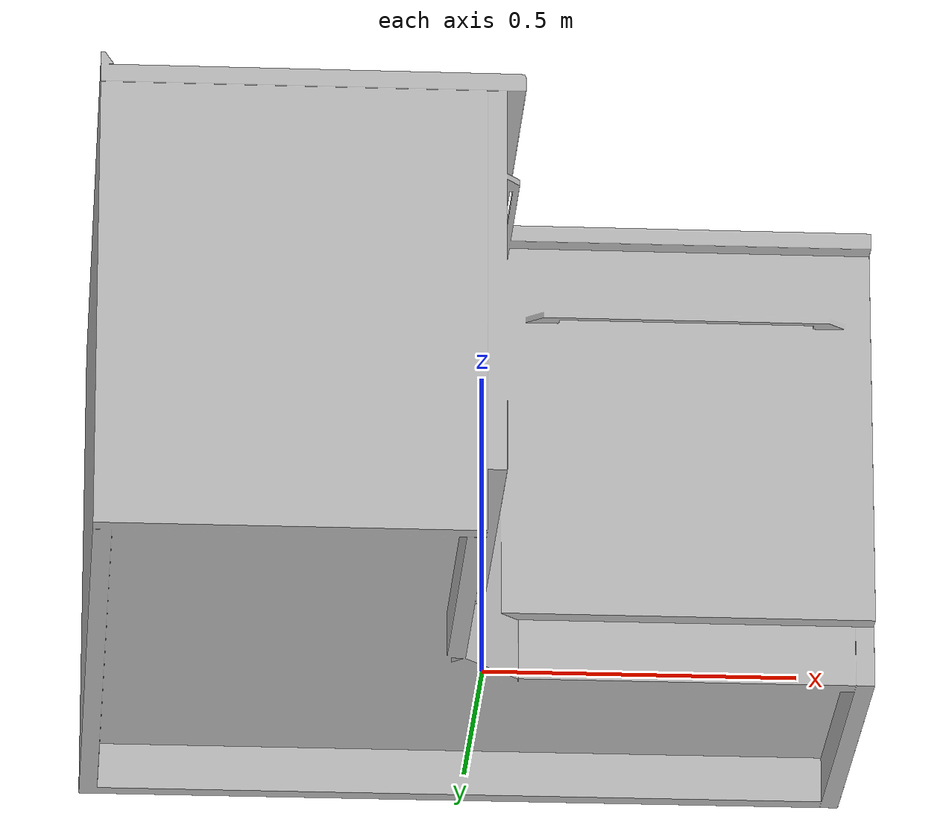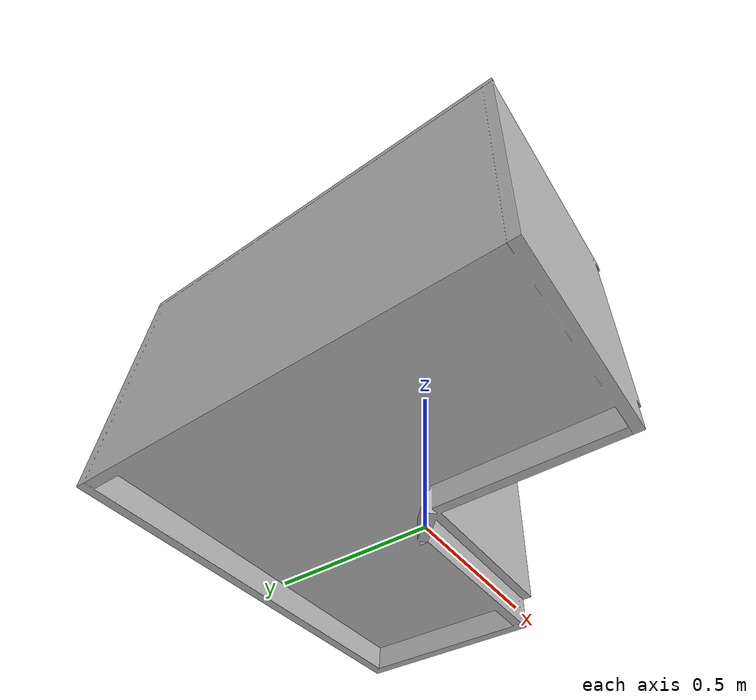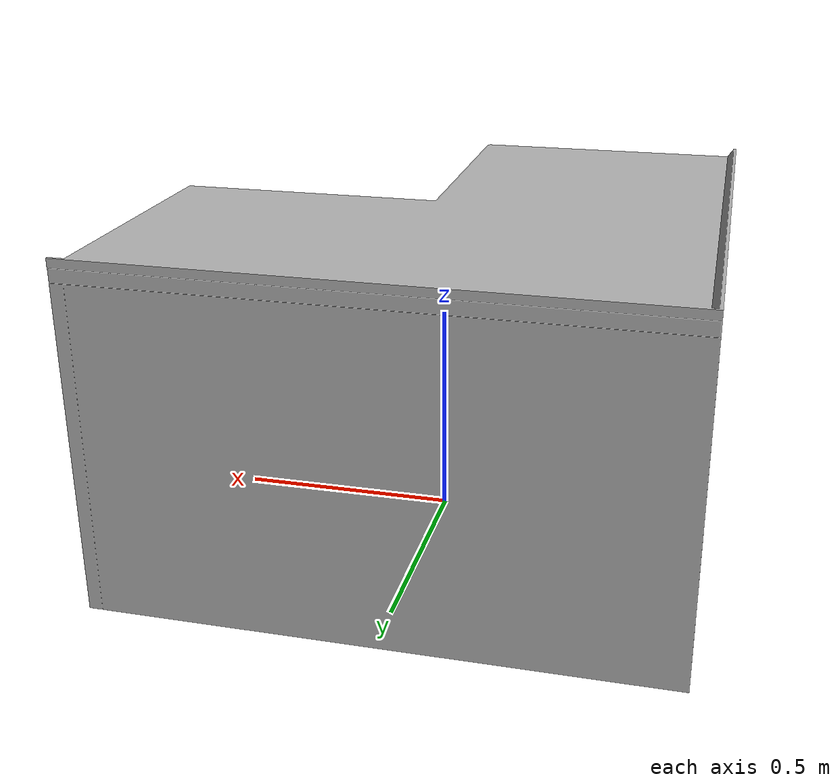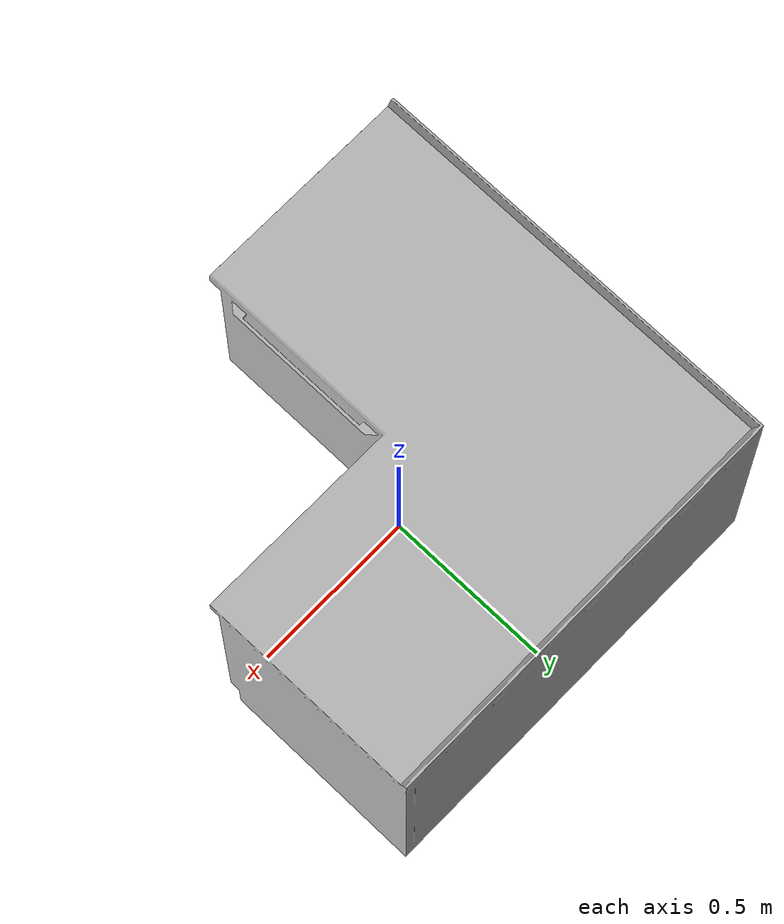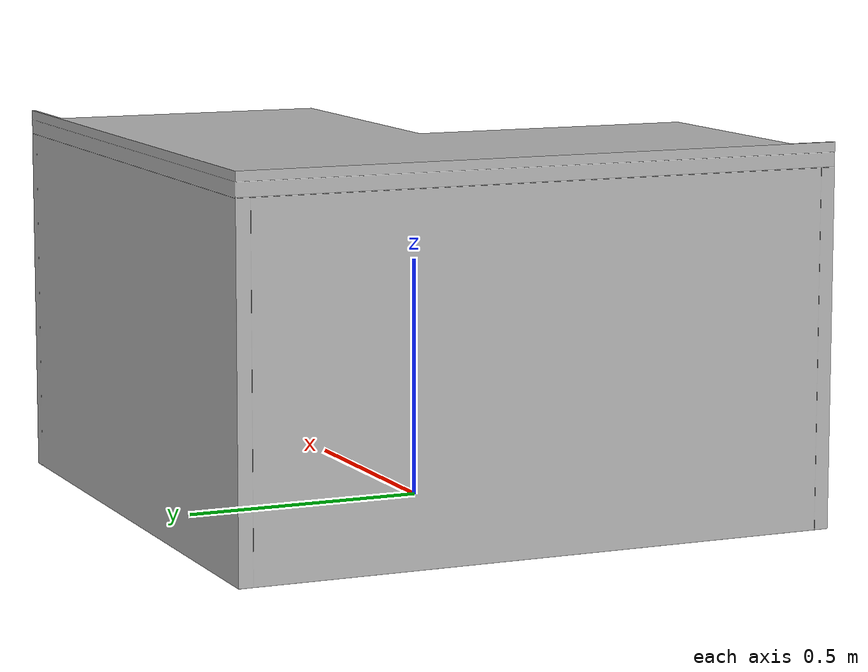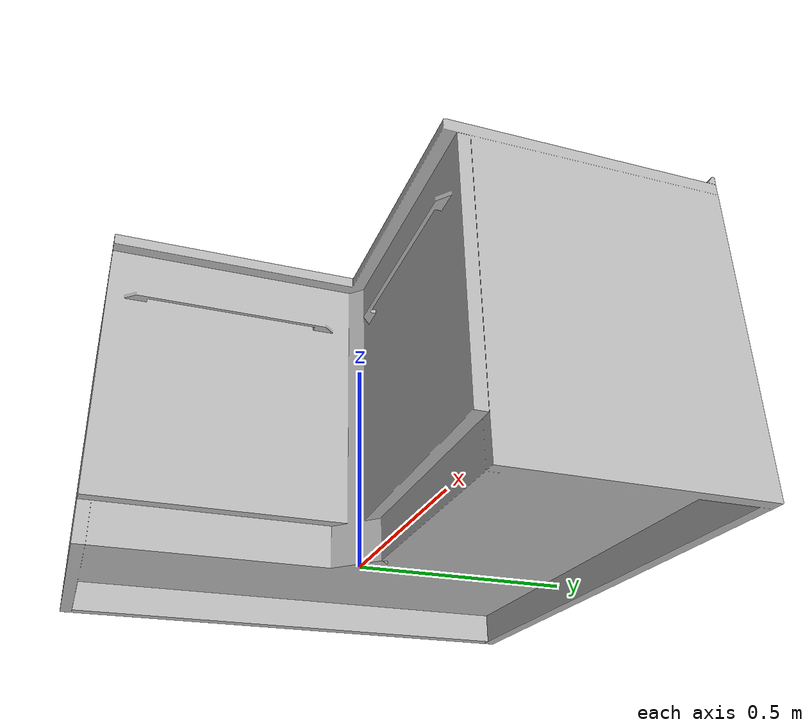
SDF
<?xml version='1.0'?>
<sdf version='1.4'>
  <model name='284'>
    <pose>0 0 0 0 0 0</pose>
    <static>true</static>
    <link name='link'>
      <collision name='collision'>
        <pose>0 0 0 0 0 0</pose>
        <geometry>
          <box>
            <size>1.25969 1.26017 2</size>
          </box>
        </geometry>
      </collision>
      <visual name='visual'>
        <pose>0 0 0 0 0 0</pose>
        <geometry>
          <mesh><uri>model://284/284.dae</uri></mesh>
        </geometry>
      </visual>
    </link>
  </model>
</sdf>
